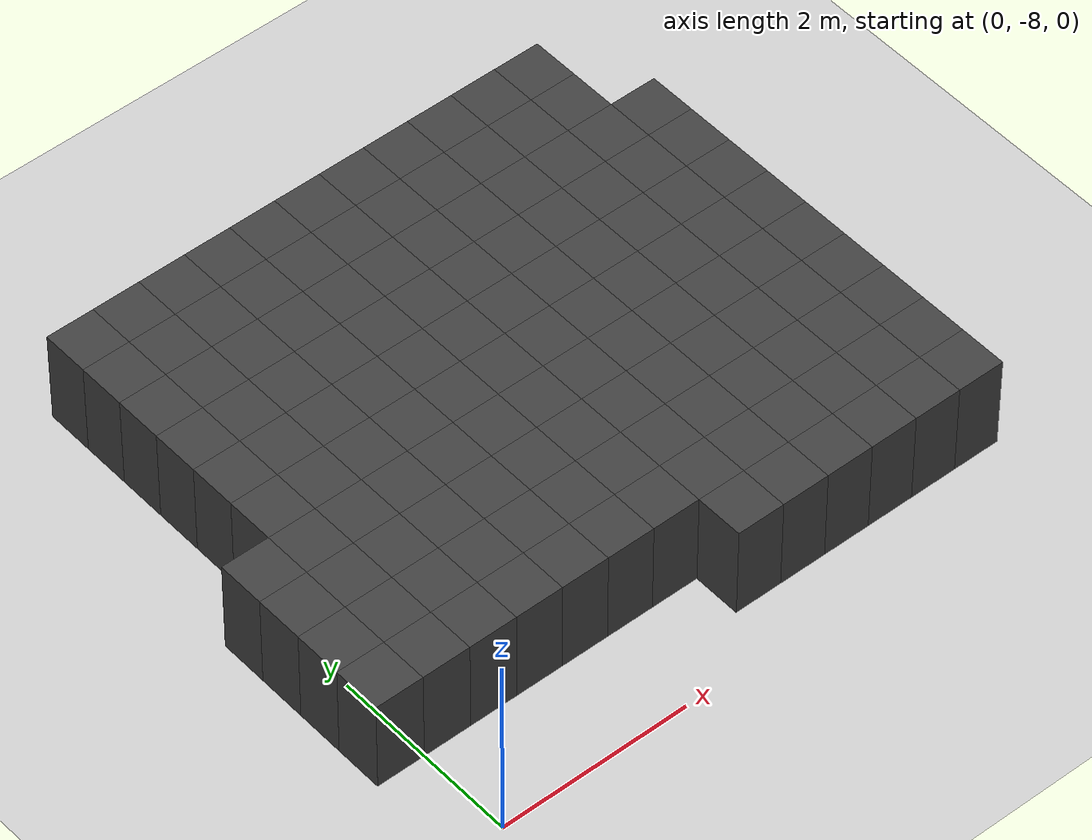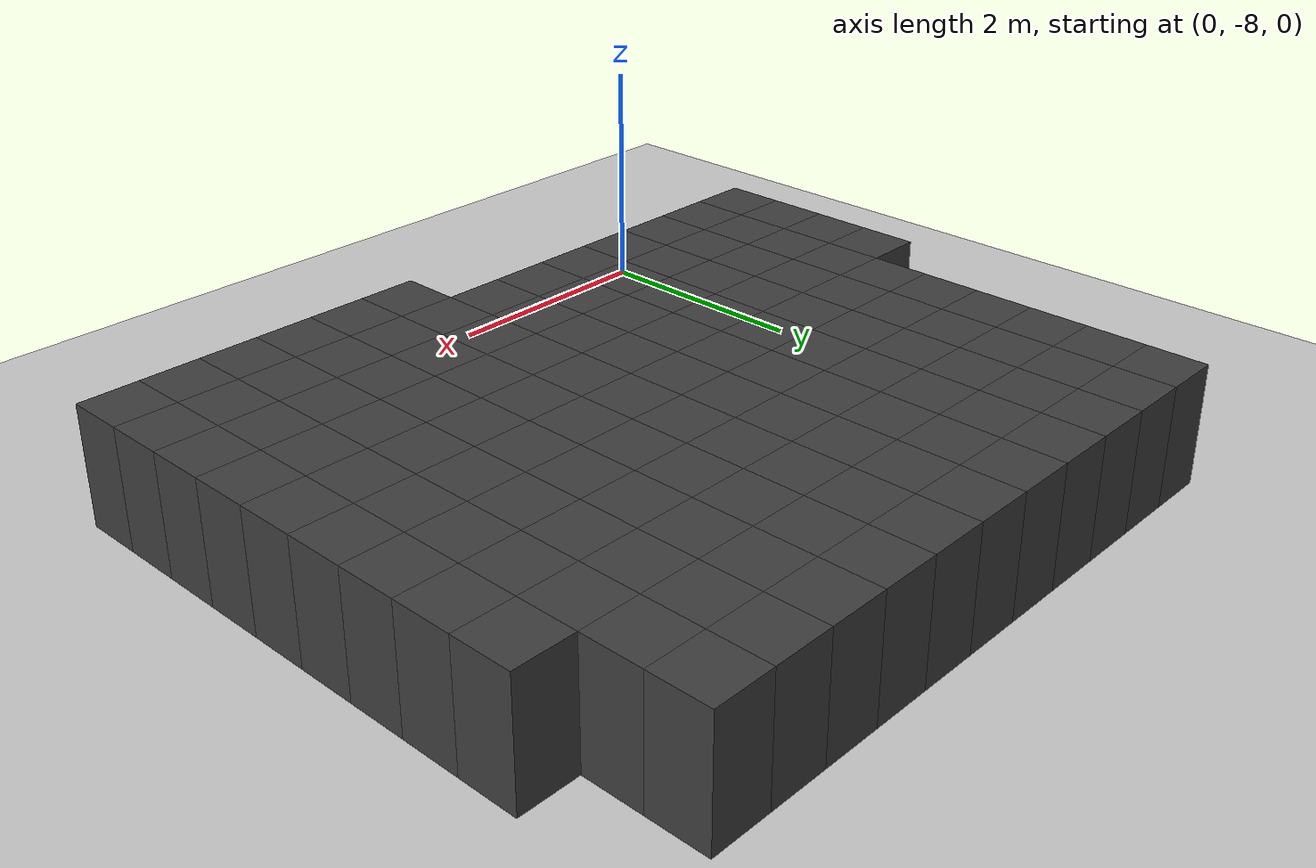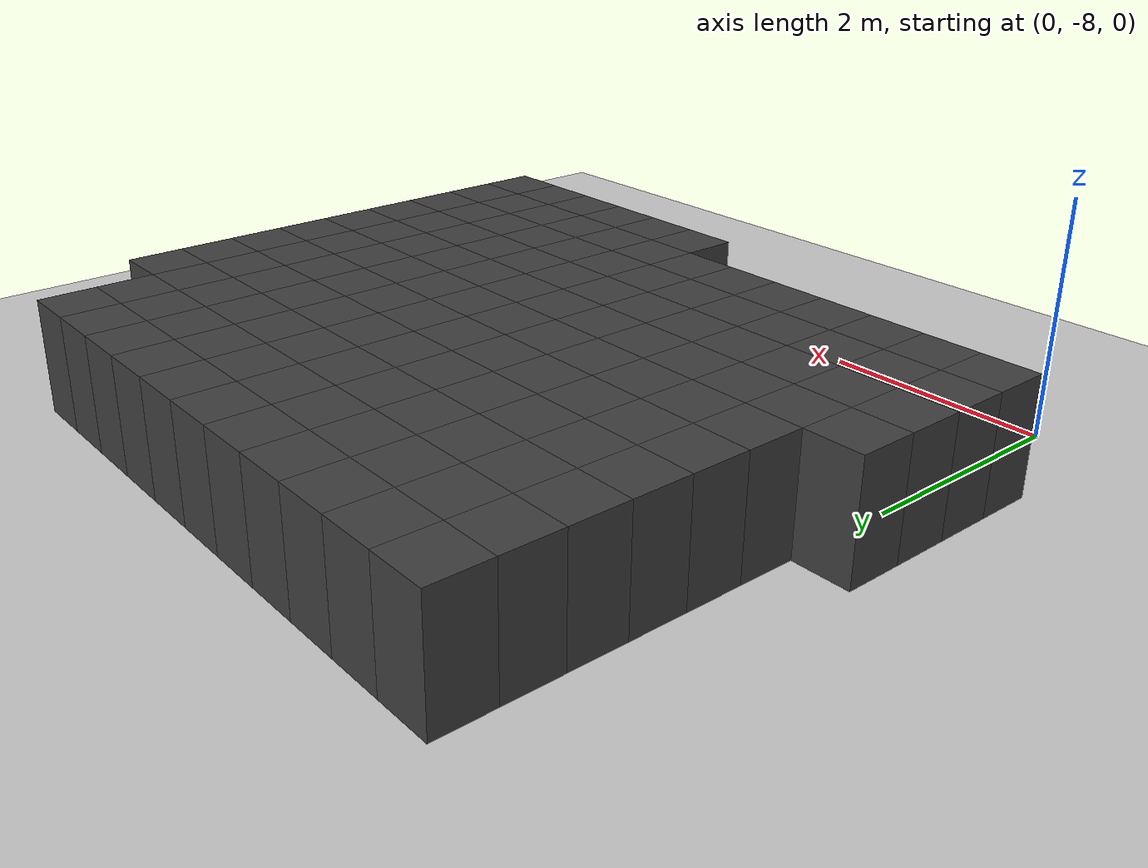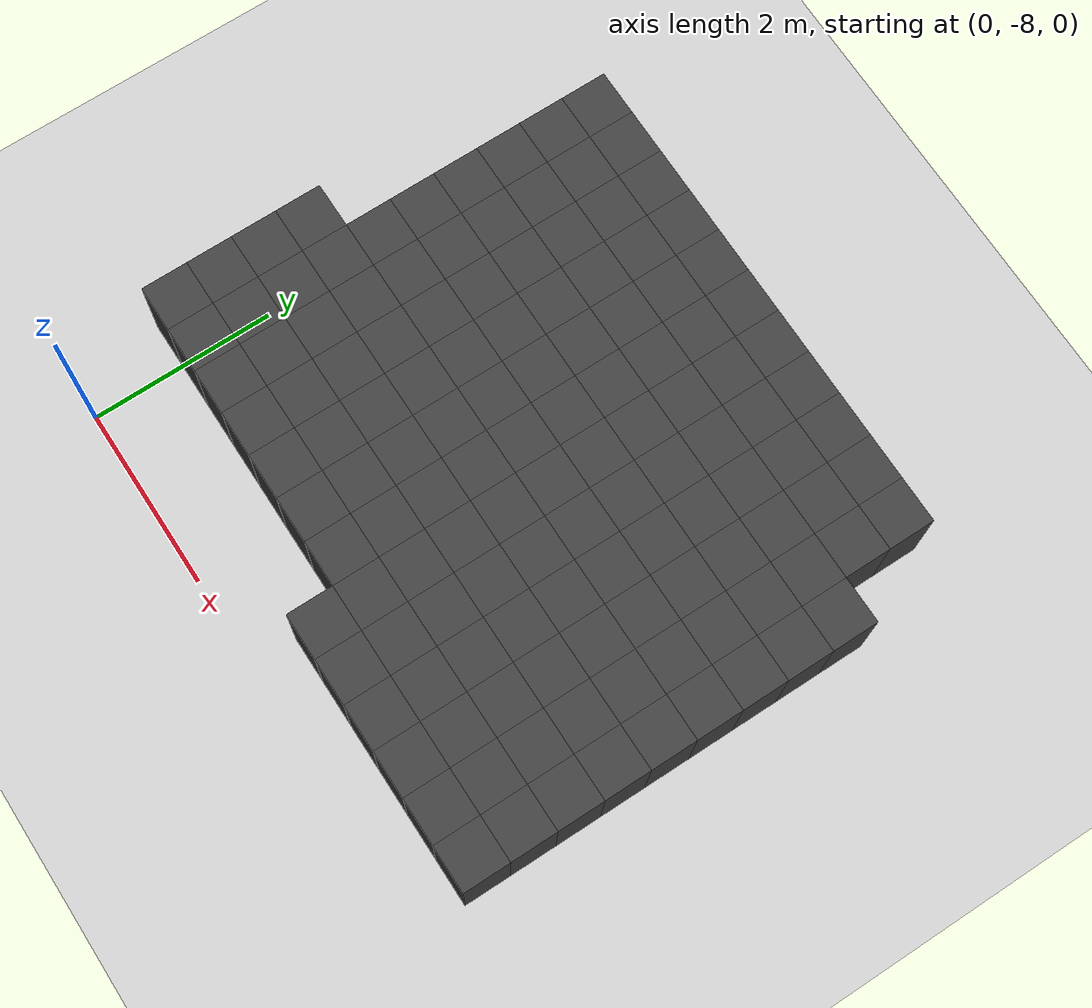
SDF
<sdf version="1.7">
 <world name="map_11515">
  <model name="ground_plane">
   <static>true</static>
   <link name="link">
    <collision name="collision">
     <geometry><plane><normal>0 0 1</normal><size>200 200</size></plane></geometry>
    </collision>
    <visual name="visual">
     <geometry><plane><normal>0 0 1</normal><size>200 200</size></plane></geometry>
     <material><ambient>0.8 0.8 0.8 1</ambient><diffuse>0.8 0.8 0.8 1</diffuse></material>
    </visual>
   </link>
  </model>
  <model name="maze_environment">
   <static>true</static>
   <link name="wall_1248">
    <pose>0.250 -2.250 0.500 0 0 0</pose>
    <collision name="col"><geometry><box><size>0.5 0.5 1.0</size></box></geometry></collision>
    <visual name="vis">
     <geometry><box><size>0.5 0.5 1.0</size></box></geometry>
     <material><ambient>0.15 0.15 0.15 1</ambient><diffuse>0.25 0.25 0.25 1</diffuse></material>
    </visual>
   </link>
   <link name="wall_1249">
    <pose>0.750 -2.250 0.500 0 0 0</pose>
    <collision name="col"><geometry><box><size>0.5 0.5 1.0</size></box></geometry></collision>
    <visual name="vis">
     <geometry><box><size>0.5 0.5 1.0</size></box></geometry>
     <material><ambient>0.15 0.15 0.15 1</ambient><diffuse>0.25 0.25 0.25 1</diffuse></material>
    </visual>
   </link>
   <link name="wall_1250">
    <pose>1.250 -2.250 0.500 0 0 0</pose>
    <collision name="col"><geometry><box><size>0.5 0.5 1.0</size></box></geometry></collision>
    <visual name="vis">
     <geometry><box><size>0.5 0.5 1.0</size></box></geometry>
     <material><ambient>0.15 0.15 0.15 1</ambient><diffuse>0.25 0.25 0.25 1</diffuse></material>
    </visual>
   </link>
   <link name="wall_1251">
    <pose>1.750 -2.250 0.500 0 0 0</pose>
    <collision name="col"><geometry><box><size>0.5 0.5 1.0</size></box></geometry></collision>
    <visual name="vis">
     <geometry><box><size>0.5 0.5 1.0</size></box></geometry>
     <material><ambient>0.15 0.15 0.15 1</ambient><diffuse>0.25 0.25 0.25 1</diffuse></material>
    </visual>
   </link>
   <link name="wall_1252">
    <pose>2.250 -2.250 0.500 0 0 0</pose>
    <collision name="col"><geometry><box><size>0.5 0.5 1.0</size></box></geometry></collision>
    <visual name="vis">
     <geometry><box><size>0.5 0.5 1.0</size></box></geometry>
     <material><ambient>0.15 0.15 0.15 1</ambient><diffuse>0.25 0.25 0.25 1</diffuse></material>
    </visual>
   </link>
   <link name="wall_1253">
    <pose>2.750 -2.250 0.500 0 0 0</pose>
    <collision name="col"><geometry><box><size>0.5 0.5 1.0</size></box></geometry></collision>
    <visual name="vis">
     <geometry><box><size>0.5 0.5 1.0</size></box></geometry>
     <material><ambient>0.15 0.15 0.15 1</ambient><diffuse>0.25 0.25 0.25 1</diffuse></material>
    </visual>
   </link>
   <link name="wall_1254">
    <pose>3.250 -2.250 0.500 0 0 0</pose>
    <collision name="col"><geometry><box><size>0.5 0.5 1.0</size></box></geometry></collision>
    <visual name="vis">
     <geometry><box><size>0.5 0.5 1.0</size></box></geometry>
     <material><ambient>0.15 0.15 0.15 1</ambient><diffuse>0.25 0.25 0.25 1</diffuse></material>
    </visual>
   </link>
   <link name="wall_1255">
    <pose>3.750 -2.250 0.500 0 0 0</pose>
    <collision name="col"><geometry><box><size>0.5 0.5 1.0</size></box></geometry></collision>
    <visual name="vis">
     <geometry><box><size>0.5 0.5 1.0</size></box></geometry>
     <material><ambient>0.15 0.15 0.15 1</ambient><diffuse>0.25 0.25 0.25 1</diffuse></material>
    </visual>
   </link>
   <link name="wall_1256">
    <pose>4.250 -2.250 0.500 0 0 0</pose>
    <collision name="col"><geometry><box><size>0.5 0.5 1.0</size></box></geometry></collision>
    <visual name="vis">
     <geometry><box><size>0.5 0.5 1.0</size></box></geometry>
     <material><ambient>0.15 0.15 0.15 1</ambient><diffuse>0.25 0.25 0.25 1</diffuse></material>
    </visual>
   </link>
   <link name="wall_1257">
    <pose>4.750 -2.250 0.500 0 0 0</pose>
    <collision name="col"><geometry><box><size>0.5 0.5 1.0</size></box></geometry></collision>
    <visual name="vis">
     <geometry><box><size>0.5 0.5 1.0</size></box></geometry>
     <material><ambient>0.15 0.15 0.15 1</ambient><diffuse>0.25 0.25 0.25 1</diffuse></material>
    </visual>
   </link>
   <link name="wall_1258">
    <pose>5.250 -2.250 0.500 0 0 0</pose>
    <collision name="col"><geometry><box><size>0.5 0.5 1.0</size></box></geometry></collision>
    <visual name="vis">
     <geometry><box><size>0.5 0.5 1.0</size></box></geometry>
     <material><ambient>0.15 0.15 0.15 1</ambient><diffuse>0.25 0.25 0.25 1</diffuse></material>
    </visual>
   </link>
   <link name="wall_1294">
    <pose>0.250 -2.750 0.500 0 0 0</pose>
    <collision name="col"><geometry><box><size>0.5 0.5 1.0</size></box></geometry></collision>
    <visual name="vis">
     <geometry><box><size>0.5 0.5 1.0</size></box></geometry>
     <material><ambient>0.15 0.15 0.15 1</ambient><diffuse>0.25 0.25 0.25 1</diffuse></material>
    </visual>
   </link>
   <link name="wall_1295">
    <pose>0.750 -2.750 0.500 0 0 0</pose>
    <collision name="col"><geometry><box><size>0.5 0.5 1.0</size></box></geometry></collision>
    <visual name="vis">
     <geometry><box><size>0.5 0.5 1.0</size></box></geometry>
     <material><ambient>0.15 0.15 0.15 1</ambient><diffuse>0.25 0.25 0.25 1</diffuse></material>
    </visual>
   </link>
   <link name="wall_1296">
    <pose>1.250 -2.750 0.500 0 0 0</pose>
    <collision name="col"><geometry><box><size>0.5 0.5 1.0</size></box></geometry></collision>
    <visual name="vis">
     <geometry><box><size>0.5 0.5 1.0</size></box></geometry>
     <material><ambient>0.15 0.15 0.15 1</ambient><diffuse>0.25 0.25 0.25 1</diffuse></material>
    </visual>
   </link>
   <link name="wall_1297">
    <pose>1.750 -2.750 0.500 0 0 0</pose>
    <collision name="col"><geometry><box><size>0.5 0.5 1.0</size></box></geometry></collision>
    <visual name="vis">
     <geometry><box><size>0.5 0.5 1.0</size></box></geometry>
     <material><ambient>0.15 0.15 0.15 1</ambient><diffuse>0.25 0.25 0.25 1</diffuse></material>
    </visual>
   </link>
   <link name="wall_1298">
    <pose>2.250 -2.750 0.500 0 0 0</pose>
    <collision name="col"><geometry><box><size>0.5 0.5 1.0</size></box></geometry></collision>
    <visual name="vis">
     <geometry><box><size>0.5 0.5 1.0</size></box></geometry>
     <material><ambient>0.15 0.15 0.15 1</ambient><diffuse>0.25 0.25 0.25 1</diffuse></material>
    </visual>
   </link>
   <link name="wall_1299">
    <pose>2.750 -2.750 0.500 0 0 0</pose>
    <collision name="col"><geometry><box><size>0.5 0.5 1.0</size></box></geometry></collision>
    <visual name="vis">
     <geometry><box><size>0.5 0.5 1.0</size></box></geometry>
     <material><ambient>0.15 0.15 0.15 1</ambient><diffuse>0.25 0.25 0.25 1</diffuse></material>
    </visual>
   </link>
   <link name="wall_1300">
    <pose>3.250 -2.750 0.500 0 0 0</pose>
    <collision name="col"><geometry><box><size>0.5 0.5 1.0</size></box></geometry></collision>
    <visual name="vis">
     <geometry><box><size>0.5 0.5 1.0</size></box></geometry>
     <material><ambient>0.15 0.15 0.15 1</ambient><diffuse>0.25 0.25 0.25 1</diffuse></material>
    </visual>
   </link>
   <link name="wall_1301">
    <pose>3.750 -2.750 0.500 0 0 0</pose>
    <collision name="col"><geometry><box><size>0.5 0.5 1.0</size></box></geometry></collision>
    <visual name="vis">
     <geometry><box><size>0.5 0.5 1.0</size></box></geometry>
     <material><ambient>0.15 0.15 0.15 1</ambient><diffuse>0.25 0.25 0.25 1</diffuse></material>
    </visual>
   </link>
   <link name="wall_1302">
    <pose>4.250 -2.750 0.500 0 0 0</pose>
    <collision name="col"><geometry><box><size>0.5 0.5 1.0</size></box></geometry></collision>
    <visual name="vis">
     <geometry><box><size>0.5 0.5 1.0</size></box></geometry>
     <material><ambient>0.15 0.15 0.15 1</ambient><diffuse>0.25 0.25 0.25 1</diffuse></material>
    </visual>
   </link>
   <link name="wall_1303">
    <pose>4.750 -2.750 0.500 0 0 0</pose>
    <collision name="col"><geometry><box><size>0.5 0.5 1.0</size></box></geometry></collision>
    <visual name="vis">
     <geometry><box><size>0.5 0.5 1.0</size></box></geometry>
     <material><ambient>0.15 0.15 0.15 1</ambient><diffuse>0.25 0.25 0.25 1</diffuse></material>
    </visual>
   </link>
   <link name="wall_1304">
    <pose>5.250 -2.750 0.500 0 0 0</pose>
    <collision name="col"><geometry><box><size>0.5 0.5 1.0</size></box></geometry></collision>
    <visual name="vis">
     <geometry><box><size>0.5 0.5 1.0</size></box></geometry>
     <material><ambient>0.15 0.15 0.15 1</ambient><diffuse>0.25 0.25 0.25 1</diffuse></material>
    </visual>
   </link>
   <link name="wall_1340">
    <pose>0.250 -3.250 0.500 0 0 0</pose>
    <collision name="col"><geometry><box><size>0.5 0.5 1.0</size></box></geometry></collision>
    <visual name="vis">
     <geometry><box><size>0.5 0.5 1.0</size></box></geometry>
     <material><ambient>0.15 0.15 0.15 1</ambient><diffuse>0.25 0.25 0.25 1</diffuse></material>
    </visual>
   </link>
   <link name="wall_1341">
    <pose>0.750 -3.250 0.500 0 0 0</pose>
    <collision name="col"><geometry><box><size>0.5 0.5 1.0</size></box></geometry></collision>
    <visual name="vis">
     <geometry><box><size>0.5 0.5 1.0</size></box></geometry>
     <material><ambient>0.15 0.15 0.15 1</ambient><diffuse>0.25 0.25 0.25 1</diffuse></material>
    </visual>
   </link>
   <link name="wall_1342">
    <pose>1.250 -3.250 0.500 0 0 0</pose>
    <collision name="col"><geometry><box><size>0.5 0.5 1.0</size></box></geometry></collision>
    <visual name="vis">
     <geometry><box><size>0.5 0.5 1.0</size></box></geometry>
     <material><ambient>0.15 0.15 0.15 1</ambient><diffuse>0.25 0.25 0.25 1</diffuse></material>
    </visual>
   </link>
   <link name="wall_1343">
    <pose>1.750 -3.250 0.500 0 0 0</pose>
    <collision name="col"><geometry><box><size>0.5 0.5 1.0</size></box></geometry></collision>
    <visual name="vis">
     <geometry><box><size>0.5 0.5 1.0</size></box></geometry>
     <material><ambient>0.15 0.15 0.15 1</ambient><diffuse>0.25 0.25 0.25 1</diffuse></material>
    </visual>
   </link>
   <link name="wall_1344">
    <pose>2.250 -3.250 0.500 0 0 0</pose>
    <collision name="col"><geometry><box><size>0.5 0.5 1.0</size></box></geometry></collision>
    <visual name="vis">
     <geometry><box><size>0.5 0.5 1.0</size></box></geometry>
     <material><ambient>0.15 0.15 0.15 1</ambient><diffuse>0.25 0.25 0.25 1</diffuse></material>
    </visual>
   </link>
   <link name="wall_1345">
    <pose>2.750 -3.250 0.500 0 0 0</pose>
    <collision name="col"><geometry><box><size>0.5 0.5 1.0</size></box></geometry></collision>
    <visual name="vis">
     <geometry><box><size>0.5 0.5 1.0</size></box></geometry>
     <material><ambient>0.15 0.15 0.15 1</ambient><diffuse>0.25 0.25 0.25 1</diffuse></material>
    </visual>
   </link>
   <link name="wall_1346">
    <pose>3.250 -3.250 0.500 0 0 0</pose>
    <collision name="col"><geometry><box><size>0.5 0.5 1.0</size></box></geometry></collision>
    <visual name="vis">
     <geometry><box><size>0.5 0.5 1.0</size></box></geometry>
     <material><ambient>0.15 0.15 0.15 1</ambient><diffuse>0.25 0.25 0.25 1</diffuse></material>
    </visual>
   </link>
   <link name="wall_1347">
    <pose>3.750 -3.250 0.500 0 0 0</pose>
    <collision name="col"><geometry><box><size>0.5 0.5 1.0</size></box></geometry></collision>
    <visual name="vis">
     <geometry><box><size>0.5 0.5 1.0</size></box></geometry>
     <material><ambient>0.15 0.15 0.15 1</ambient><diffuse>0.25 0.25 0.25 1</diffuse></material>
    </visual>
   </link>
   <link name="wall_1348">
    <pose>4.250 -3.250 0.500 0 0 0</pose>
    <collision name="col"><geometry><box><size>0.5 0.5 1.0</size></box></geometry></collision>
    <visual name="vis">
     <geometry><box><size>0.5 0.5 1.0</size></box></geometry>
     <material><ambient>0.15 0.15 0.15 1</ambient><diffuse>0.25 0.25 0.25 1</diffuse></material>
    </visual>
   </link>
   <link name="wall_1349">
    <pose>4.750 -3.250 0.500 0 0 0</pose>
    <collision name="col"><geometry><box><size>0.5 0.5 1.0</size></box></geometry></collision>
    <visual name="vis">
     <geometry><box><size>0.5 0.5 1.0</size></box></geometry>
     <material><ambient>0.15 0.15 0.15 1</ambient><diffuse>0.25 0.25 0.25 1</diffuse></material>
    </visual>
   </link>
   <link name="wall_1350">
    <pose>5.250 -3.250 0.500 0 0 0</pose>
    <collision name="col"><geometry><box><size>0.5 0.5 1.0</size></box></geometry></collision>
    <visual name="vis">
     <geometry><box><size>0.5 0.5 1.0</size></box></geometry>
     <material><ambient>0.15 0.15 0.15 1</ambient><diffuse>0.25 0.25 0.25 1</diffuse></material>
    </visual>
   </link>
   <link name="wall_1351">
    <pose>5.750 -3.250 0.500 0 0 0</pose>
    <collision name="col"><geometry><box><size>0.5 0.5 1.0</size></box></geometry></collision>
    <visual name="vis">
     <geometry><box><size>0.5 0.5 1.0</size></box></geometry>
     <material><ambient>0.15 0.15 0.15 1</ambient><diffuse>0.25 0.25 0.25 1</diffuse></material>
    </visual>
   </link>
   <link name="wall_1386">
    <pose>0.250 -3.750 0.500 0 0 0</pose>
    <collision name="col"><geometry><box><size>0.5 0.5 1.0</size></box></geometry></collision>
    <visual name="vis">
     <geometry><box><size>0.5 0.5 1.0</size></box></geometry>
     <material><ambient>0.15 0.15 0.15 1</ambient><diffuse>0.25 0.25 0.25 1</diffuse></material>
    </visual>
   </link>
   <link name="wall_1387">
    <pose>0.750 -3.750 0.500 0 0 0</pose>
    <collision name="col"><geometry><box><size>0.5 0.5 1.0</size></box></geometry></collision>
    <visual name="vis">
     <geometry><box><size>0.5 0.5 1.0</size></box></geometry>
     <material><ambient>0.15 0.15 0.15 1</ambient><diffuse>0.25 0.25 0.25 1</diffuse></material>
    </visual>
   </link>
   <link name="wall_1388">
    <pose>1.250 -3.750 0.500 0 0 0</pose>
    <collision name="col"><geometry><box><size>0.5 0.5 1.0</size></box></geometry></collision>
    <visual name="vis">
     <geometry><box><size>0.5 0.5 1.0</size></box></geometry>
     <material><ambient>0.15 0.15 0.15 1</ambient><diffuse>0.25 0.25 0.25 1</diffuse></material>
    </visual>
   </link>
   <link name="wall_1389">
    <pose>1.750 -3.750 0.500 0 0 0</pose>
    <collision name="col"><geometry><box><size>0.5 0.5 1.0</size></box></geometry></collision>
    <visual name="vis">
     <geometry><box><size>0.5 0.5 1.0</size></box></geometry>
     <material><ambient>0.15 0.15 0.15 1</ambient><diffuse>0.25 0.25 0.25 1</diffuse></material>
    </visual>
   </link>
   <link name="wall_1390">
    <pose>2.250 -3.750 0.500 0 0 0</pose>
    <collision name="col"><geometry><box><size>0.5 0.5 1.0</size></box></geometry></collision>
    <visual name="vis">
     <geometry><box><size>0.5 0.5 1.0</size></box></geometry>
     <material><ambient>0.15 0.15 0.15 1</ambient><diffuse>0.25 0.25 0.25 1</diffuse></material>
    </visual>
   </link>
   <link name="wall_1391">
    <pose>2.750 -3.750 0.500 0 0 0</pose>
    <collision name="col"><geometry><box><size>0.5 0.5 1.0</size></box></geometry></collision>
    <visual name="vis">
     <geometry><box><size>0.5 0.5 1.0</size></box></geometry>
     <material><ambient>0.15 0.15 0.15 1</ambient><diffuse>0.25 0.25 0.25 1</diffuse></material>
    </visual>
   </link>
   <link name="wall_1392">
    <pose>3.250 -3.750 0.500 0 0 0</pose>
    <collision name="col"><geometry><box><size>0.5 0.5 1.0</size></box></geometry></collision>
    <visual name="vis">
     <geometry><box><size>0.5 0.5 1.0</size></box></geometry>
     <material><ambient>0.15 0.15 0.15 1</ambient><diffuse>0.25 0.25 0.25 1</diffuse></material>
    </visual>
   </link>
   <link name="wall_1393">
    <pose>3.750 -3.750 0.500 0 0 0</pose>
    <collision name="col"><geometry><box><size>0.5 0.5 1.0</size></box></geometry></collision>
    <visual name="vis">
     <geometry><box><size>0.5 0.5 1.0</size></box></geometry>
     <material><ambient>0.15 0.15 0.15 1</ambient><diffuse>0.25 0.25 0.25 1</diffuse></material>
    </visual>
   </link>
   <link name="wall_1394">
    <pose>4.250 -3.750 0.500 0 0 0</pose>
    <collision name="col"><geometry><box><size>0.5 0.5 1.0</size></box></geometry></collision>
    <visual name="vis">
     <geometry><box><size>0.5 0.5 1.0</size></box></geometry>
     <material><ambient>0.15 0.15 0.15 1</ambient><diffuse>0.25 0.25 0.25 1</diffuse></material>
    </visual>
   </link>
   <link name="wall_1395">
    <pose>4.750 -3.750 0.500 0 0 0</pose>
    <collision name="col"><geometry><box><size>0.5 0.5 1.0</size></box></geometry></collision>
    <visual name="vis">
     <geometry><box><size>0.5 0.5 1.0</size></box></geometry>
     <material><ambient>0.15 0.15 0.15 1</ambient><diffuse>0.25 0.25 0.25 1</diffuse></material>
    </visual>
   </link>
   <link name="wall_1396">
    <pose>5.250 -3.750 0.500 0 0 0</pose>
    <collision name="col"><geometry><box><size>0.5 0.5 1.0</size></box></geometry></collision>
    <visual name="vis">
     <geometry><box><size>0.5 0.5 1.0</size></box></geometry>
     <material><ambient>0.15 0.15 0.15 1</ambient><diffuse>0.25 0.25 0.25 1</diffuse></material>
    </visual>
   </link>
   <link name="wall_1397">
    <pose>5.750 -3.750 0.500 0 0 0</pose>
    <collision name="col"><geometry><box><size>0.5 0.5 1.0</size></box></geometry></collision>
    <visual name="vis">
     <geometry><box><size>0.5 0.5 1.0</size></box></geometry>
     <material><ambient>0.15 0.15 0.15 1</ambient><diffuse>0.25 0.25 0.25 1</diffuse></material>
    </visual>
   </link>
   <link name="wall_1432">
    <pose>0.250 -4.250 0.500 0 0 0</pose>
    <collision name="col"><geometry><box><size>0.5 0.5 1.0</size></box></geometry></collision>
    <visual name="vis">
     <geometry><box><size>0.5 0.5 1.0</size></box></geometry>
     <material><ambient>0.15 0.15 0.15 1</ambient><diffuse>0.25 0.25 0.25 1</diffuse></material>
    </visual>
   </link>
   <link name="wall_1433">
    <pose>0.750 -4.250 0.500 0 0 0</pose>
    <collision name="col"><geometry><box><size>0.5 0.5 1.0</size></box></geometry></collision>
    <visual name="vis">
     <geometry><box><size>0.5 0.5 1.0</size></box></geometry>
     <material><ambient>0.15 0.15 0.15 1</ambient><diffuse>0.25 0.25 0.25 1</diffuse></material>
    </visual>
   </link>
   <link name="wall_1434">
    <pose>1.250 -4.250 0.500 0 0 0</pose>
    <collision name="col"><geometry><box><size>0.5 0.5 1.0</size></box></geometry></collision>
    <visual name="vis">
     <geometry><box><size>0.5 0.5 1.0</size></box></geometry>
     <material><ambient>0.15 0.15 0.15 1</ambient><diffuse>0.25 0.25 0.25 1</diffuse></material>
    </visual>
   </link>
   <link name="wall_1435">
    <pose>1.750 -4.250 0.500 0 0 0</pose>
    <collision name="col"><geometry><box><size>0.5 0.5 1.0</size></box></geometry></collision>
    <visual name="vis">
     <geometry><box><size>0.5 0.5 1.0</size></box></geometry>
     <material><ambient>0.15 0.15 0.15 1</ambient><diffuse>0.25 0.25 0.25 1</diffuse></material>
    </visual>
   </link>
   <link name="wall_1436">
    <pose>2.250 -4.250 0.500 0 0 0</pose>
    <collision name="col"><geometry><box><size>0.5 0.5 1.0</size></box></geometry></collision>
    <visual name="vis">
     <geometry><box><size>0.5 0.5 1.0</size></box></geometry>
     <material><ambient>0.15 0.15 0.15 1</ambient><diffuse>0.25 0.25 0.25 1</diffuse></material>
    </visual>
   </link>
   <link name="wall_1437">
    <pose>2.750 -4.250 0.500 0 0 0</pose>
    <collision name="col"><geometry><box><size>0.5 0.5 1.0</size></box></geometry></collision>
    <visual name="vis">
     <geometry><box><size>0.5 0.5 1.0</size></box></geometry>
     <material><ambient>0.15 0.15 0.15 1</ambient><diffuse>0.25 0.25 0.25 1</diffuse></material>
    </visual>
   </link>
   <link name="wall_1438">
    <pose>3.250 -4.250 0.500 0 0 0</pose>
    <collision name="col"><geometry><box><size>0.5 0.5 1.0</size></box></geometry></collision>
    <visual name="vis">
     <geometry><box><size>0.5 0.5 1.0</size></box></geometry>
     <material><ambient>0.15 0.15 0.15 1</ambient><diffuse>0.25 0.25 0.25 1</diffuse></material>
    </visual>
   </link>
   <link name="wall_1439">
    <pose>3.750 -4.250 0.500 0 0 0</pose>
    <collision name="col"><geometry><box><size>0.5 0.5 1.0</size></box></geometry></collision>
    <visual name="vis">
     <geometry><box><size>0.5 0.5 1.0</size></box></geometry>
     <material><ambient>0.15 0.15 0.15 1</ambient><diffuse>0.25 0.25 0.25 1</diffuse></material>
    </visual>
   </link>
   <link name="wall_1440">
    <pose>4.250 -4.250 0.500 0 0 0</pose>
    <collision name="col"><geometry><box><size>0.5 0.5 1.0</size></box></geometry></collision>
    <visual name="vis">
     <geometry><box><size>0.5 0.5 1.0</size></box></geometry>
     <material><ambient>0.15 0.15 0.15 1</ambient><diffuse>0.25 0.25 0.25 1</diffuse></material>
    </visual>
   </link>
   <link name="wall_1441">
    <pose>4.750 -4.250 0.500 0 0 0</pose>
    <collision name="col"><geometry><box><size>0.5 0.5 1.0</size></box></geometry></collision>
    <visual name="vis">
     <geometry><box><size>0.5 0.5 1.0</size></box></geometry>
     <material><ambient>0.15 0.15 0.15 1</ambient><diffuse>0.25 0.25 0.25 1</diffuse></material>
    </visual>
   </link>
   <link name="wall_1442">
    <pose>5.250 -4.250 0.500 0 0 0</pose>
    <collision name="col"><geometry><box><size>0.5 0.5 1.0</size></box></geometry></collision>
    <visual name="vis">
     <geometry><box><size>0.5 0.5 1.0</size></box></geometry>
     <material><ambient>0.15 0.15 0.15 1</ambient><diffuse>0.25 0.25 0.25 1</diffuse></material>
    </visual>
   </link>
   <link name="wall_1443">
    <pose>5.750 -4.250 0.500 0 0 0</pose>
    <collision name="col"><geometry><box><size>0.5 0.5 1.0</size></box></geometry></collision>
    <visual name="vis">
     <geometry><box><size>0.5 0.5 1.0</size></box></geometry>
     <material><ambient>0.15 0.15 0.15 1</ambient><diffuse>0.25 0.25 0.25 1</diffuse></material>
    </visual>
   </link>
   <link name="wall_1478">
    <pose>0.250 -4.750 0.500 0 0 0</pose>
    <collision name="col"><geometry><box><size>0.5 0.5 1.0</size></box></geometry></collision>
    <visual name="vis">
     <geometry><box><size>0.5 0.5 1.0</size></box></geometry>
     <material><ambient>0.15 0.15 0.15 1</ambient><diffuse>0.25 0.25 0.25 1</diffuse></material>
    </visual>
   </link>
   <link name="wall_1479">
    <pose>0.750 -4.750 0.500 0 0 0</pose>
    <collision name="col"><geometry><box><size>0.5 0.5 1.0</size></box></geometry></collision>
    <visual name="vis">
     <geometry><box><size>0.5 0.5 1.0</size></box></geometry>
     <material><ambient>0.15 0.15 0.15 1</ambient><diffuse>0.25 0.25 0.25 1</diffuse></material>
    </visual>
   </link>
   <link name="wall_1480">
    <pose>1.250 -4.750 0.500 0 0 0</pose>
    <collision name="col"><geometry><box><size>0.5 0.5 1.0</size></box></geometry></collision>
    <visual name="vis">
     <geometry><box><size>0.5 0.5 1.0</size></box></geometry>
     <material><ambient>0.15 0.15 0.15 1</ambient><diffuse>0.25 0.25 0.25 1</diffuse></material>
    </visual>
   </link>
   <link name="wall_1481">
    <pose>1.750 -4.750 0.500 0 0 0</pose>
    <collision name="col"><geometry><box><size>0.5 0.5 1.0</size></box></geometry></collision>
    <visual name="vis">
     <geometry><box><size>0.5 0.5 1.0</size></box></geometry>
     <material><ambient>0.15 0.15 0.15 1</ambient><diffuse>0.25 0.25 0.25 1</diffuse></material>
    </visual>
   </link>
   <link name="wall_1482">
    <pose>2.250 -4.750 0.500 0 0 0</pose>
    <collision name="col"><geometry><box><size>0.5 0.5 1.0</size></box></geometry></collision>
    <visual name="vis">
     <geometry><box><size>0.5 0.5 1.0</size></box></geometry>
     <material><ambient>0.15 0.15 0.15 1</ambient><diffuse>0.25 0.25 0.25 1</diffuse></material>
    </visual>
   </link>
   <link name="wall_1483">
    <pose>2.750 -4.750 0.500 0 0 0</pose>
    <collision name="col"><geometry><box><size>0.5 0.5 1.0</size></box></geometry></collision>
    <visual name="vis">
     <geometry><box><size>0.5 0.5 1.0</size></box></geometry>
     <material><ambient>0.15 0.15 0.15 1</ambient><diffuse>0.25 0.25 0.25 1</diffuse></material>
    </visual>
   </link>
   <link name="wall_1484">
    <pose>3.250 -4.750 0.500 0 0 0</pose>
    <collision name="col"><geometry><box><size>0.5 0.5 1.0</size></box></geometry></collision>
    <visual name="vis">
     <geometry><box><size>0.5 0.5 1.0</size></box></geometry>
     <material><ambient>0.15 0.15 0.15 1</ambient><diffuse>0.25 0.25 0.25 1</diffuse></material>
    </visual>
   </link>
   <link name="wall_1485">
    <pose>3.750 -4.750 0.500 0 0 0</pose>
    <collision name="col"><geometry><box><size>0.5 0.5 1.0</size></box></geometry></collision>
    <visual name="vis">
     <geometry><box><size>0.5 0.5 1.0</size></box></geometry>
     <material><ambient>0.15 0.15 0.15 1</ambient><diffuse>0.25 0.25 0.25 1</diffuse></material>
    </visual>
   </link>
   <link name="wall_1486">
    <pose>4.250 -4.750 0.500 0 0 0</pose>
    <collision name="col"><geometry><box><size>0.5 0.5 1.0</size></box></geometry></collision>
    <visual name="vis">
     <geometry><box><size>0.5 0.5 1.0</size></box></geometry>
     <material><ambient>0.15 0.15 0.15 1</ambient><diffuse>0.25 0.25 0.25 1</diffuse></material>
    </visual>
   </link>
   <link name="wall_1487">
    <pose>4.750 -4.750 0.500 0 0 0</pose>
    <collision name="col"><geometry><box><size>0.5 0.5 1.0</size></box></geometry></collision>
    <visual name="vis">
     <geometry><box><size>0.5 0.5 1.0</size></box></geometry>
     <material><ambient>0.15 0.15 0.15 1</ambient><diffuse>0.25 0.25 0.25 1</diffuse></material>
    </visual>
   </link>
   <link name="wall_1488">
    <pose>5.250 -4.750 0.500 0 0 0</pose>
    <collision name="col"><geometry><box><size>0.5 0.5 1.0</size></box></geometry></collision>
    <visual name="vis">
     <geometry><box><size>0.5 0.5 1.0</size></box></geometry>
     <material><ambient>0.15 0.15 0.15 1</ambient><diffuse>0.25 0.25 0.25 1</diffuse></material>
    </visual>
   </link>
   <link name="wall_1489">
    <pose>5.750 -4.750 0.500 0 0 0</pose>
    <collision name="col"><geometry><box><size>0.5 0.5 1.0</size></box></geometry></collision>
    <visual name="vis">
     <geometry><box><size>0.5 0.5 1.0</size></box></geometry>
     <material><ambient>0.15 0.15 0.15 1</ambient><diffuse>0.25 0.25 0.25 1</diffuse></material>
    </visual>
   </link>
   <link name="wall_1526">
    <pose>-0.250 -5.250 0.500 0 0 0</pose>
    <collision name="col"><geometry><box><size>0.5 0.5 1.0</size></box></geometry></collision>
    <visual name="vis">
     <geometry><box><size>0.5 0.5 1.0</size></box></geometry>
     <material><ambient>0.15 0.15 0.15 1</ambient><diffuse>0.25 0.25 0.25 1</diffuse></material>
    </visual>
   </link>
   <link name="wall_1527">
    <pose>0.250 -5.250 0.500 0 0 0</pose>
    <collision name="col"><geometry><box><size>0.5 0.5 1.0</size></box></geometry></collision>
    <visual name="vis">
     <geometry><box><size>0.5 0.5 1.0</size></box></geometry>
     <material><ambient>0.15 0.15 0.15 1</ambient><diffuse>0.25 0.25 0.25 1</diffuse></material>
    </visual>
   </link>
   <link name="wall_1528">
    <pose>0.750 -5.250 0.500 0 0 0</pose>
    <collision name="col"><geometry><box><size>0.5 0.5 1.0</size></box></geometry></collision>
    <visual name="vis">
     <geometry><box><size>0.5 0.5 1.0</size></box></geometry>
     <material><ambient>0.15 0.15 0.15 1</ambient><diffuse>0.25 0.25 0.25 1</diffuse></material>
    </visual>
   </link>
   <link name="wall_1529">
    <pose>1.250 -5.250 0.500 0 0 0</pose>
    <collision name="col"><geometry><box><size>0.5 0.5 1.0</size></box></geometry></collision>
    <visual name="vis">
     <geometry><box><size>0.5 0.5 1.0</size></box></geometry>
     <material><ambient>0.15 0.15 0.15 1</ambient><diffuse>0.25 0.25 0.25 1</diffuse></material>
    </visual>
   </link>
   <link name="wall_1530">
    <pose>1.750 -5.250 0.500 0 0 0</pose>
    <collision name="col"><geometry><box><size>0.5 0.5 1.0</size></box></geometry></collision>
    <visual name="vis">
     <geometry><box><size>0.5 0.5 1.0</size></box></geometry>
     <material><ambient>0.15 0.15 0.15 1</ambient><diffuse>0.25 0.25 0.25 1</diffuse></material>
    </visual>
   </link>
   <link name="wall_1531">
    <pose>2.250 -5.250 0.500 0 0 0</pose>
    <collision name="col"><geometry><box><size>0.5 0.5 1.0</size></box></geometry></collision>
    <visual name="vis">
     <geometry><box><size>0.5 0.5 1.0</size></box></geometry>
     <material><ambient>0.15 0.15 0.15 1</ambient><diffuse>0.25 0.25 0.25 1</diffuse></material>
    </visual>
   </link>
   <link name="wall_1532">
    <pose>2.750 -5.250 0.500 0 0 0</pose>
    <collision name="col"><geometry><box><size>0.5 0.5 1.0</size></box></geometry></collision>
    <visual name="vis">
     <geometry><box><size>0.5 0.5 1.0</size></box></geometry>
     <material><ambient>0.15 0.15 0.15 1</ambient><diffuse>0.25 0.25 0.25 1</diffuse></material>
    </visual>
   </link>
   <link name="wall_1533">
    <pose>3.250 -5.250 0.500 0 0 0</pose>
    <collision name="col"><geometry><box><size>0.5 0.5 1.0</size></box></geometry></collision>
    <visual name="vis">
     <geometry><box><size>0.5 0.5 1.0</size></box></geometry>
     <material><ambient>0.15 0.15 0.15 1</ambient><diffuse>0.25 0.25 0.25 1</diffuse></material>
    </visual>
   </link>
   <link name="wall_1534">
    <pose>3.750 -5.250 0.500 0 0 0</pose>
    <collision name="col"><geometry><box><size>0.5 0.5 1.0</size></box></geometry></collision>
    <visual name="vis">
     <geometry><box><size>0.5 0.5 1.0</size></box></geometry>
     <material><ambient>0.15 0.15 0.15 1</ambient><diffuse>0.25 0.25 0.25 1</diffuse></material>
    </visual>
   </link>
   <link name="wall_1535">
    <pose>4.250 -5.250 0.500 0 0 0</pose>
    <collision name="col"><geometry><box><size>0.5 0.5 1.0</size></box></geometry></collision>
    <visual name="vis">
     <geometry><box><size>0.5 0.5 1.0</size></box></geometry>
     <material><ambient>0.15 0.15 0.15 1</ambient><diffuse>0.25 0.25 0.25 1</diffuse></material>
    </visual>
   </link>
   <link name="wall_1536">
    <pose>4.750 -5.250 0.500 0 0 0</pose>
    <collision name="col"><geometry><box><size>0.5 0.5 1.0</size></box></geometry></collision>
    <visual name="vis">
     <geometry><box><size>0.5 0.5 1.0</size></box></geometry>
     <material><ambient>0.15 0.15 0.15 1</ambient><diffuse>0.25 0.25 0.25 1</diffuse></material>
    </visual>
   </link>
   <link name="wall_1537">
    <pose>5.250 -5.250 0.500 0 0 0</pose>
    <collision name="col"><geometry><box><size>0.5 0.5 1.0</size></box></geometry></collision>
    <visual name="vis">
     <geometry><box><size>0.5 0.5 1.0</size></box></geometry>
     <material><ambient>0.15 0.15 0.15 1</ambient><diffuse>0.25 0.25 0.25 1</diffuse></material>
    </visual>
   </link>
   <link name="wall_1538">
    <pose>5.750 -5.250 0.500 0 0 0</pose>
    <collision name="col"><geometry><box><size>0.5 0.5 1.0</size></box></geometry></collision>
    <visual name="vis">
     <geometry><box><size>0.5 0.5 1.0</size></box></geometry>
     <material><ambient>0.15 0.15 0.15 1</ambient><diffuse>0.25 0.25 0.25 1</diffuse></material>
    </visual>
   </link>
   <link name="wall_1575">
    <pose>-0.250 -5.750 0.500 0 0 0</pose>
    <collision name="col"><geometry><box><size>0.5 0.5 1.0</size></box></geometry></collision>
    <visual name="vis">
     <geometry><box><size>0.5 0.5 1.0</size></box></geometry>
     <material><ambient>0.15 0.15 0.15 1</ambient><diffuse>0.25 0.25 0.25 1</diffuse></material>
    </visual>
   </link>
   <link name="wall_1576">
    <pose>0.250 -5.750 0.500 0 0 0</pose>
    <collision name="col"><geometry><box><size>0.5 0.5 1.0</size></box></geometry></collision>
    <visual name="vis">
     <geometry><box><size>0.5 0.5 1.0</size></box></geometry>
     <material><ambient>0.15 0.15 0.15 1</ambient><diffuse>0.25 0.25 0.25 1</diffuse></material>
    </visual>
   </link>
   <link name="wall_1577">
    <pose>0.750 -5.750 0.500 0 0 0</pose>
    <collision name="col"><geometry><box><size>0.5 0.5 1.0</size></box></geometry></collision>
    <visual name="vis">
     <geometry><box><size>0.5 0.5 1.0</size></box></geometry>
     <material><ambient>0.15 0.15 0.15 1</ambient><diffuse>0.25 0.25 0.25 1</diffuse></material>
    </visual>
   </link>
   <link name="wall_1578">
    <pose>1.250 -5.750 0.500 0 0 0</pose>
    <collision name="col"><geometry><box><size>0.5 0.5 1.0</size></box></geometry></collision>
    <visual name="vis">
     <geometry><box><size>0.5 0.5 1.0</size></box></geometry>
     <material><ambient>0.15 0.15 0.15 1</ambient><diffuse>0.25 0.25 0.25 1</diffuse></material>
    </visual>
   </link>
   <link name="wall_1579">
    <pose>1.750 -5.750 0.500 0 0 0</pose>
    <collision name="col"><geometry><box><size>0.5 0.5 1.0</size></box></geometry></collision>
    <visual name="vis">
     <geometry><box><size>0.5 0.5 1.0</size></box></geometry>
     <material><ambient>0.15 0.15 0.15 1</ambient><diffuse>0.25 0.25 0.25 1</diffuse></material>
    </visual>
   </link>
   <link name="wall_1580">
    <pose>2.250 -5.750 0.500 0 0 0</pose>
    <collision name="col"><geometry><box><size>0.5 0.5 1.0</size></box></geometry></collision>
    <visual name="vis">
     <geometry><box><size>0.5 0.5 1.0</size></box></geometry>
     <material><ambient>0.15 0.15 0.15 1</ambient><diffuse>0.25 0.25 0.25 1</diffuse></material>
    </visual>
   </link>
   <link name="wall_1581">
    <pose>2.750 -5.750 0.500 0 0 0</pose>
    <collision name="col"><geometry><box><size>0.5 0.5 1.0</size></box></geometry></collision>
    <visual name="vis">
     <geometry><box><size>0.5 0.5 1.0</size></box></geometry>
     <material><ambient>0.15 0.15 0.15 1</ambient><diffuse>0.25 0.25 0.25 1</diffuse></material>
    </visual>
   </link>
   <link name="wall_1582">
    <pose>3.250 -5.750 0.500 0 0 0</pose>
    <collision name="col"><geometry><box><size>0.5 0.5 1.0</size></box></geometry></collision>
    <visual name="vis">
     <geometry><box><size>0.5 0.5 1.0</size></box></geometry>
     <material><ambient>0.15 0.15 0.15 1</ambient><diffuse>0.25 0.25 0.25 1</diffuse></material>
    </visual>
   </link>
   <link name="wall_1583">
    <pose>3.750 -5.750 0.500 0 0 0</pose>
    <collision name="col"><geometry><box><size>0.5 0.5 1.0</size></box></geometry></collision>
    <visual name="vis">
     <geometry><box><size>0.5 0.5 1.0</size></box></geometry>
     <material><ambient>0.15 0.15 0.15 1</ambient><diffuse>0.25 0.25 0.25 1</diffuse></material>
    </visual>
   </link>
   <link name="wall_1584">
    <pose>4.250 -5.750 0.500 0 0 0</pose>
    <collision name="col"><geometry><box><size>0.5 0.5 1.0</size></box></geometry></collision>
    <visual name="vis">
     <geometry><box><size>0.5 0.5 1.0</size></box></geometry>
     <material><ambient>0.15 0.15 0.15 1</ambient><diffuse>0.25 0.25 0.25 1</diffuse></material>
    </visual>
   </link>
   <link name="wall_1585">
    <pose>4.750 -5.750 0.500 0 0 0</pose>
    <collision name="col"><geometry><box><size>0.5 0.5 1.0</size></box></geometry></collision>
    <visual name="vis">
     <geometry><box><size>0.5 0.5 1.0</size></box></geometry>
     <material><ambient>0.15 0.15 0.15 1</ambient><diffuse>0.25 0.25 0.25 1</diffuse></material>
    </visual>
   </link>
   <link name="wall_1586">
    <pose>5.250 -5.750 0.500 0 0 0</pose>
    <collision name="col"><geometry><box><size>0.5 0.5 1.0</size></box></geometry></collision>
    <visual name="vis">
     <geometry><box><size>0.5 0.5 1.0</size></box></geometry>
     <material><ambient>0.15 0.15 0.15 1</ambient><diffuse>0.25 0.25 0.25 1</diffuse></material>
    </visual>
   </link>
   <link name="wall_1587">
    <pose>5.750 -5.750 0.500 0 0 0</pose>
    <collision name="col"><geometry><box><size>0.5 0.5 1.0</size></box></geometry></collision>
    <visual name="vis">
     <geometry><box><size>0.5 0.5 1.0</size></box></geometry>
     <material><ambient>0.15 0.15 0.15 1</ambient><diffuse>0.25 0.25 0.25 1</diffuse></material>
    </visual>
   </link>
   <link name="wall_1624">
    <pose>-0.250 -6.250 0.500 0 0 0</pose>
    <collision name="col"><geometry><box><size>0.5 0.5 1.0</size></box></geometry></collision>
    <visual name="vis">
     <geometry><box><size>0.5 0.5 1.0</size></box></geometry>
     <material><ambient>0.15 0.15 0.15 1</ambient><diffuse>0.25 0.25 0.25 1</diffuse></material>
    </visual>
   </link>
   <link name="wall_1625">
    <pose>0.250 -6.250 0.500 0 0 0</pose>
    <collision name="col"><geometry><box><size>0.5 0.5 1.0</size></box></geometry></collision>
    <visual name="vis">
     <geometry><box><size>0.5 0.5 1.0</size></box></geometry>
     <material><ambient>0.15 0.15 0.15 1</ambient><diffuse>0.25 0.25 0.25 1</diffuse></material>
    </visual>
   </link>
   <link name="wall_1626">
    <pose>0.750 -6.250 0.500 0 0 0</pose>
    <collision name="col"><geometry><box><size>0.5 0.5 1.0</size></box></geometry></collision>
    <visual name="vis">
     <geometry><box><size>0.5 0.5 1.0</size></box></geometry>
     <material><ambient>0.15 0.15 0.15 1</ambient><diffuse>0.25 0.25 0.25 1</diffuse></material>
    </visual>
   </link>
   <link name="wall_1627">
    <pose>1.250 -6.250 0.500 0 0 0</pose>
    <collision name="col"><geometry><box><size>0.5 0.5 1.0</size></box></geometry></collision>
    <visual name="vis">
     <geometry><box><size>0.5 0.5 1.0</size></box></geometry>
     <material><ambient>0.15 0.15 0.15 1</ambient><diffuse>0.25 0.25 0.25 1</diffuse></material>
    </visual>
   </link>
   <link name="wall_1628">
    <pose>1.750 -6.250 0.500 0 0 0</pose>
    <collision name="col"><geometry><box><size>0.5 0.5 1.0</size></box></geometry></collision>
    <visual name="vis">
     <geometry><box><size>0.5 0.5 1.0</size></box></geometry>
     <material><ambient>0.15 0.15 0.15 1</ambient><diffuse>0.25 0.25 0.25 1</diffuse></material>
    </visual>
   </link>
   <link name="wall_1629">
    <pose>2.250 -6.250 0.500 0 0 0</pose>
    <collision name="col"><geometry><box><size>0.5 0.5 1.0</size></box></geometry></collision>
    <visual name="vis">
     <geometry><box><size>0.5 0.5 1.0</size></box></geometry>
     <material><ambient>0.15 0.15 0.15 1</ambient><diffuse>0.25 0.25 0.25 1</diffuse></material>
    </visual>
   </link>
   <link name="wall_1630">
    <pose>2.750 -6.250 0.500 0 0 0</pose>
    <collision name="col"><geometry><box><size>0.5 0.5 1.0</size></box></geometry></collision>
    <visual name="vis">
     <geometry><box><size>0.5 0.5 1.0</size></box></geometry>
     <material><ambient>0.15 0.15 0.15 1</ambient><diffuse>0.25 0.25 0.25 1</diffuse></material>
    </visual>
   </link>
   <link name="wall_1631">
    <pose>3.250 -6.250 0.500 0 0 0</pose>
    <collision name="col"><geometry><box><size>0.5 0.5 1.0</size></box></geometry></collision>
    <visual name="vis">
     <geometry><box><size>0.5 0.5 1.0</size></box></geometry>
     <material><ambient>0.15 0.15 0.15 1</ambient><diffuse>0.25 0.25 0.25 1</diffuse></material>
    </visual>
   </link>
   <link name="wall_1632">
    <pose>3.750 -6.250 0.500 0 0 0</pose>
    <collision name="col"><geometry><box><size>0.5 0.5 1.0</size></box></geometry></collision>
    <visual name="vis">
     <geometry><box><size>0.5 0.5 1.0</size></box></geometry>
     <material><ambient>0.15 0.15 0.15 1</ambient><diffuse>0.25 0.25 0.25 1</diffuse></material>
    </visual>
   </link>
   <link name="wall_1633">
    <pose>4.250 -6.250 0.500 0 0 0</pose>
    <collision name="col"><geometry><box><size>0.5 0.5 1.0</size></box></geometry></collision>
    <visual name="vis">
     <geometry><box><size>0.5 0.5 1.0</size></box></geometry>
     <material><ambient>0.15 0.15 0.15 1</ambient><diffuse>0.25 0.25 0.25 1</diffuse></material>
    </visual>
   </link>
   <link name="wall_1634">
    <pose>4.750 -6.250 0.500 0 0 0</pose>
    <collision name="col"><geometry><box><size>0.5 0.5 1.0</size></box></geometry></collision>
    <visual name="vis">
     <geometry><box><size>0.5 0.5 1.0</size></box></geometry>
     <material><ambient>0.15 0.15 0.15 1</ambient><diffuse>0.25 0.25 0.25 1</diffuse></material>
    </visual>
   </link>
   <link name="wall_1635">
    <pose>5.250 -6.250 0.500 0 0 0</pose>
    <collision name="col"><geometry><box><size>0.5 0.5 1.0</size></box></geometry></collision>
    <visual name="vis">
     <geometry><box><size>0.5 0.5 1.0</size></box></geometry>
     <material><ambient>0.15 0.15 0.15 1</ambient><diffuse>0.25 0.25 0.25 1</diffuse></material>
    </visual>
   </link>
   <link name="wall_1636">
    <pose>5.750 -6.250 0.500 0 0 0</pose>
    <collision name="col"><geometry><box><size>0.5 0.5 1.0</size></box></geometry></collision>
    <visual name="vis">
     <geometry><box><size>0.5 0.5 1.0</size></box></geometry>
     <material><ambient>0.15 0.15 0.15 1</ambient><diffuse>0.25 0.25 0.25 1</diffuse></material>
    </visual>
   </link>
   <link name="wall_1673">
    <pose>-0.250 -6.750 0.500 0 0 0</pose>
    <collision name="col"><geometry><box><size>0.5 0.5 1.0</size></box></geometry></collision>
    <visual name="vis">
     <geometry><box><size>0.5 0.5 1.0</size></box></geometry>
     <material><ambient>0.15 0.15 0.15 1</ambient><diffuse>0.25 0.25 0.25 1</diffuse></material>
    </visual>
   </link>
   <link name="wall_1674">
    <pose>0.250 -6.750 0.500 0 0 0</pose>
    <collision name="col"><geometry><box><size>0.5 0.5 1.0</size></box></geometry></collision>
    <visual name="vis">
     <geometry><box><size>0.5 0.5 1.0</size></box></geometry>
     <material><ambient>0.15 0.15 0.15 1</ambient><diffuse>0.25 0.25 0.25 1</diffuse></material>
    </visual>
   </link>
   <link name="wall_1675">
    <pose>0.750 -6.750 0.500 0 0 0</pose>
    <collision name="col"><geometry><box><size>0.5 0.5 1.0</size></box></geometry></collision>
    <visual name="vis">
     <geometry><box><size>0.5 0.5 1.0</size></box></geometry>
     <material><ambient>0.15 0.15 0.15 1</ambient><diffuse>0.25 0.25 0.25 1</diffuse></material>
    </visual>
   </link>
   <link name="wall_1676">
    <pose>1.250 -6.750 0.500 0 0 0</pose>
    <collision name="col"><geometry><box><size>0.5 0.5 1.0</size></box></geometry></collision>
    <visual name="vis">
     <geometry><box><size>0.5 0.5 1.0</size></box></geometry>
     <material><ambient>0.15 0.15 0.15 1</ambient><diffuse>0.25 0.25 0.25 1</diffuse></material>
    </visual>
   </link>
   <link name="wall_1677">
    <pose>1.750 -6.750 0.500 0 0 0</pose>
    <collision name="col"><geometry><box><size>0.5 0.5 1.0</size></box></geometry></collision>
    <visual name="vis">
     <geometry><box><size>0.5 0.5 1.0</size></box></geometry>
     <material><ambient>0.15 0.15 0.15 1</ambient><diffuse>0.25 0.25 0.25 1</diffuse></material>
    </visual>
   </link>
   <link name="wall_1678">
    <pose>2.250 -6.750 0.500 0 0 0</pose>
    <collision name="col"><geometry><box><size>0.5 0.5 1.0</size></box></geometry></collision>
    <visual name="vis">
     <geometry><box><size>0.5 0.5 1.0</size></box></geometry>
     <material><ambient>0.15 0.15 0.15 1</ambient><diffuse>0.25 0.25 0.25 1</diffuse></material>
    </visual>
   </link>
   <link name="wall_1679">
    <pose>2.750 -6.750 0.500 0 0 0</pose>
    <collision name="col"><geometry><box><size>0.5 0.5 1.0</size></box></geometry></collision>
    <visual name="vis">
     <geometry><box><size>0.5 0.5 1.0</size></box></geometry>
     <material><ambient>0.15 0.15 0.15 1</ambient><diffuse>0.25 0.25 0.25 1</diffuse></material>
    </visual>
   </link>
   <link name="wall_1680">
    <pose>3.250 -6.750 0.500 0 0 0</pose>
    <collision name="col"><geometry><box><size>0.5 0.5 1.0</size></box></geometry></collision>
    <visual name="vis">
     <geometry><box><size>0.5 0.5 1.0</size></box></geometry>
     <material><ambient>0.15 0.15 0.15 1</ambient><diffuse>0.25 0.25 0.25 1</diffuse></material>
    </visual>
   </link>
   <link name="wall_1681">
    <pose>3.750 -6.750 0.500 0 0 0</pose>
    <collision name="col"><geometry><box><size>0.5 0.5 1.0</size></box></geometry></collision>
    <visual name="vis">
     <geometry><box><size>0.5 0.5 1.0</size></box></geometry>
     <material><ambient>0.15 0.15 0.15 1</ambient><diffuse>0.25 0.25 0.25 1</diffuse></material>
    </visual>
   </link>
   <link name="wall_1682">
    <pose>4.250 -6.750 0.500 0 0 0</pose>
    <collision name="col"><geometry><box><size>0.5 0.5 1.0</size></box></geometry></collision>
    <visual name="vis">
     <geometry><box><size>0.5 0.5 1.0</size></box></geometry>
     <material><ambient>0.15 0.15 0.15 1</ambient><diffuse>0.25 0.25 0.25 1</diffuse></material>
    </visual>
   </link>
   <link name="wall_1683">
    <pose>4.750 -6.750 0.500 0 0 0</pose>
    <collision name="col"><geometry><box><size>0.5 0.5 1.0</size></box></geometry></collision>
    <visual name="vis">
     <geometry><box><size>0.5 0.5 1.0</size></box></geometry>
     <material><ambient>0.15 0.15 0.15 1</ambient><diffuse>0.25 0.25 0.25 1</diffuse></material>
    </visual>
   </link>
   <link name="wall_1684">
    <pose>5.250 -6.750 0.500 0 0 0</pose>
    <collision name="col"><geometry><box><size>0.5 0.5 1.0</size></box></geometry></collision>
    <visual name="vis">
     <geometry><box><size>0.5 0.5 1.0</size></box></geometry>
     <material><ambient>0.15 0.15 0.15 1</ambient><diffuse>0.25 0.25 0.25 1</diffuse></material>
    </visual>
   </link>
   <link name="wall_1685">
    <pose>5.750 -6.750 0.500 0 0 0</pose>
    <collision name="col"><geometry><box><size>0.5 0.5 1.0</size></box></geometry></collision>
    <visual name="vis">
     <geometry><box><size>0.5 0.5 1.0</size></box></geometry>
     <material><ambient>0.15 0.15 0.15 1</ambient><diffuse>0.25 0.25 0.25 1</diffuse></material>
    </visual>
   </link>
   <link name="wall_1729">
    <pose>3.250 -7.250 0.500 0 0 0</pose>
    <collision name="col"><geometry><box><size>0.5 0.5 1.0</size></box></geometry></collision>
    <visual name="vis">
     <geometry><box><size>0.5 0.5 1.0</size></box></geometry>
     <material><ambient>0.15 0.15 0.15 1</ambient><diffuse>0.25 0.25 0.25 1</diffuse></material>
    </visual>
   </link>
   <link name="wall_1730">
    <pose>3.750 -7.250 0.500 0 0 0</pose>
    <collision name="col"><geometry><box><size>0.5 0.5 1.0</size></box></geometry></collision>
    <visual name="vis">
     <geometry><box><size>0.5 0.5 1.0</size></box></geometry>
     <material><ambient>0.15 0.15 0.15 1</ambient><diffuse>0.25 0.25 0.25 1</diffuse></material>
    </visual>
   </link>
   <link name="wall_1731">
    <pose>4.250 -7.250 0.500 0 0 0</pose>
    <collision name="col"><geometry><box><size>0.5 0.5 1.0</size></box></geometry></collision>
    <visual name="vis">
     <geometry><box><size>0.5 0.5 1.0</size></box></geometry>
     <material><ambient>0.15 0.15 0.15 1</ambient><diffuse>0.25 0.25 0.25 1</diffuse></material>
    </visual>
   </link>
   <link name="wall_1732">
    <pose>4.750 -7.250 0.500 0 0 0</pose>
    <collision name="col"><geometry><box><size>0.5 0.5 1.0</size></box></geometry></collision>
    <visual name="vis">
     <geometry><box><size>0.5 0.5 1.0</size></box></geometry>
     <material><ambient>0.15 0.15 0.15 1</ambient><diffuse>0.25 0.25 0.25 1</diffuse></material>
    </visual>
   </link>
   <link name="wall_1733">
    <pose>5.250 -7.250 0.500 0 0 0</pose>
    <collision name="col"><geometry><box><size>0.5 0.5 1.0</size></box></geometry></collision>
    <visual name="vis">
     <geometry><box><size>0.5 0.5 1.0</size></box></geometry>
     <material><ambient>0.15 0.15 0.15 1</ambient><diffuse>0.25 0.25 0.25 1</diffuse></material>
    </visual>
   </link>
   <link name="wall_1734">
    <pose>5.750 -7.250 0.500 0 0 0</pose>
    <collision name="col"><geometry><box><size>0.5 0.5 1.0</size></box></geometry></collision>
    <visual name="vis">
     <geometry><box><size>0.5 0.5 1.0</size></box></geometry>
     <material><ambient>0.15 0.15 0.15 1</ambient><diffuse>0.25 0.25 0.25 1</diffuse></material>
    </visual>
   </link>
  </model>
 </world>
</sdf>
